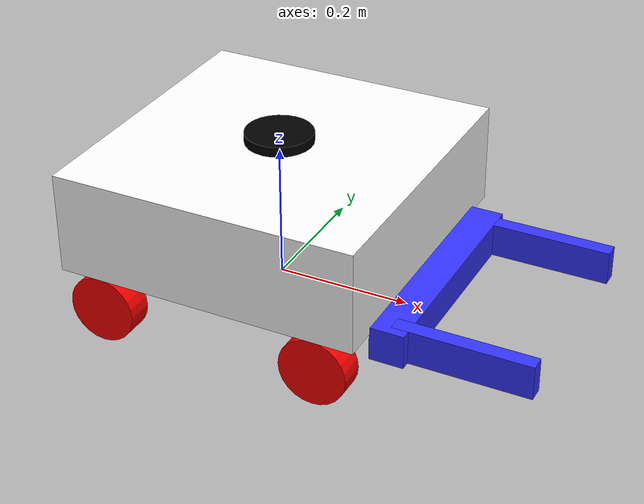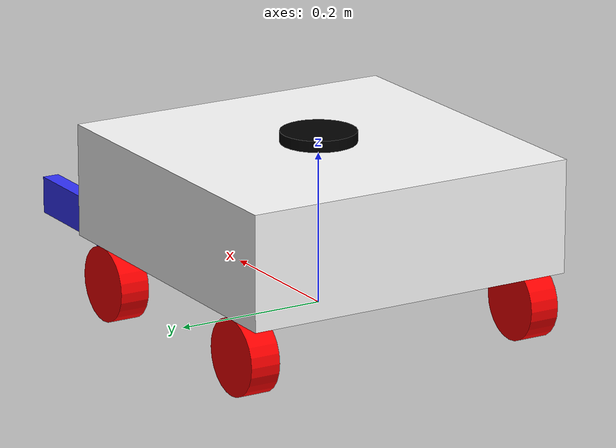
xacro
<?xml version="1.0"?>
<robot xmlns:xacro="http://www.ros.org/wiki/xacro"  name="robot">

    <xacro:include filename="inertial_macros.xacro" />
    <xacro:include filename="robot_car.xacro" />
    <xacro:include filename="gazebo_control.xacro" />,
    <xacro:include filename="lidar.xacro" />
    <xacro:include filename="gripper.xacro" />
    <xacro:include filename="arm_tr.xacro" />
    <xacro:include filename="gripper_tr.xacro" />

    <ros2_control name="gripper_robot_gazebo_system" type="system">
        <hardware>
            <plugin>gazebo_ros2_control/GazeboSystem</plugin>
        </hardware>
        <xacro:arm_tr/>
        <xacro:gripper1_tr/>
        <xacro:gripper2_tr/>
    </ros2_control>
    <xacro:robot_controller/>
</robot>

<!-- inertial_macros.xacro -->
<robot xmlns:xacro="http://www.ros.org/wiki/xacro" >

    <!-- Specify some standard inertial calculations https://en.wikipedia.org/wiki/List_of_moments_of_inertia -->
    <!-- These make use of xacro's mathematical functionality -->
<xacro:macro name="inertial_sphere" params="mass radius *origin">
    <inertial>
        <xacro:insert_block name="origin"/>
        <mass value="${mass}" />
        <inertia ixx="${(2/5) * mass * (radius*radius)}" ixy="0.0" ixz="0.0"
                iyy="${(2/5) * mass * (radius*radius)}" iyz="0.0"
                izz="${(2/5) * mass * (radius*radius)}" />
    </inertial>
</xacro:macro>
<xacro:macro name="inertial_box" params="mass x y z *origin">
    <inertial>
        <xacro:insert_block name="origin"/>
        <mass value="${mass}" />
        <inertia ixx="${(1/12) * mass * (y*y+z*z)}" ixy="0.0" ixz="0.0"
                iyy="${(1/12) * mass * (x*x+z*z)}" iyz="0.0"
                izz="${(1/12) * mass * (x*x+y*y)}" />
    </inertial>
</xacro:macro>
    <xacro:macro name="inertial_cylinder" params="mass length radius *origin">
        <inertial>
            <xacro:insert_block name="origin"/>
            <mass value="${mass}" />
            <inertia ixx="${(1/12) * mass * (3*radius*radius + length*length)}" ixy="0.0" ixz="0.0"
                    iyy="${(1/12) * mass * (3*radius*radius + length*length)}" iyz="0.0"
                    izz="${(1/2) * mass * (radius*radius)}" />
        </inertial>
    </xacro:macro>
</robot>

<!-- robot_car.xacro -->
<robot xmlns:xacro="http://www.ros.org/wiki/xacro" >

    <material name="white">
        <color rgba="1 1 1 1" />
    </material>

    <material name="orange">
        <color rgba="1 0.3 0.1 1"/>
    </material>

    <material name="blue">
        <color rgba="0.2 0.2 1 1"/>
    </material>

    <material name="black">
        <color rgba="0 0 0 1"/>
    </material>

    <material name="red">
        <color rgba="1 0 0 1"/>
    </material>

    <material name="green">
        <color rgba="0 1 0 1" />
    </material>

    <material name="gray">
        <color rgba="0.5 0.5 0.5 1" />
    </material>

    <material name="pink">
        <color rgba="1 0.4 0.7 1" />
    </material>

    <!-- BASE LINK -->

    <link name="base_link">
    </link>

    <!-- BASE_FOOTPRINT LINK -->
    <joint name="base_footprint_joint" type="fixed">
        <parent link="base_link"/>
        <child link="base_footprint"/>
        <origin xyz="0 0 0" rpy="0 0 0"/>
    </joint>

    <link name="base_footprint">
    </link>

    <joint name="chassis_joint" type="fixed">
        <parent link="base_link"/>
        <child link="chassis"/>
        <origin xyz="0 0 0"/>
    </joint>

    <!-- Chassis Link -->
    <link name="chassis">
        <visual>
            <origin xyz="0 0 0.14" rpy="0 0 0"/>
            <geometry>
                <box size="0.452 0.452 0.15"/>
                <!-- Hole geometry -->
                <cylinder length="0.15" radius="0.0725"/>
            </geometry>
            <material name="white"/>
        </visual>
        <collision>
            <origin xyz="0 0 0.14" rpy="0 0 0"/>
            <geometry>
                <box size="0.452 0.452 0.15"/>
                <!-- Hole geometry -->
                <cylinder length="0.15" radius="0.0725"/>
            </geometry>
        </collision>
        <xacro:inertial_box mass="200.0" x="0.452" y="0.452" z="0.15">
            <origin xyz="0 0 0.14" rpy="0 0 0"/>
        </xacro:inertial_box>
    </link>
    <gazebo reference="chassis">
        <material>Gazebo/White</material>
    </gazebo>

    <!-- frontleft -->

    <joint name="front_left_wheel_joint" type="continuous">
        <parent link="base_link"/>
        <child link="front_left_wheel"/>
        <origin xyz="0.165 0.205 0.015" rpy="-${pi/2} 0 0"/>
        <axis xyz="0 0 1"/>
    </joint>

    <link name="front_left_wheel">
        <visual>
            <geometry>
                <cylinder length="0.04" radius="0.05" />
            </geometry>
            <material name="red"/>
        </visual>
        <collision>
            <geometry>
                <cylinder length="0.04" radius="0.05" />
            </geometry>
        </collision>
        <xacro:inertial_cylinder mass="20" length="0.04" radius="0.05">
            <origin xyz="0 0 0" rpy="0 0 0"/>
        </xacro:inertial_cylinder>
    </link>
    <gazebo reference="front_left_wheel">
        <material>Gazebo/Red</material>
    </gazebo>

    <!-- frontright -->

    <joint name="front_right_wheel_joint" type="continuous">
        <parent link="base_link"/>
        <child link="front_right_wheel"/>
        <origin xyz="0.165 -0.205 0.015" rpy="${pi/2} 0 0"/>
        <axis xyz="0 0 -1"/>
    </joint>

    <link name="front_right_wheel">
        <visual>
            <geometry>
                <cylinder length="0.04" radius="0.05" />
            </geometry>
            <material name="red"/>
        </visual>
        <collision>
            <geometry>
                <cylinder length="0.04" radius="0.05" />
            </geometry>
        </collision>
        <xacro:inertial_cylinder mass="20" length="0.04" radius="0.05">
            <origin xyz="0 0 0" rpy="0 0 0"/>
        </xacro:inertial_cylinder>
    </link>
    <gazebo reference="front_right_wheel">
        <material>Gazebo/Red</material>
    </gazebo>

    <!-- backleft -->

    <joint name="back_left_wheel_joint" type="continuous">
        <parent link="base_link"/>
        <child link="back_left_wheel"/>
        <origin xyz="-0.165 0.205 0.015" rpy="-${pi/2} 0 0"/>
        <axis xyz="0 0 1"/>
    </joint>

    <link name="back_left_wheel">
        <visual>
            <geometry>
                <cylinder length="0.04" radius="0.05" />
            </geometry>
            <material name="red"/>
        </visual>
        <collision>
            <geometry>
                <cylinder length="0.04" radius="0.05" />
            </geometry>
        </collision>
        <xacro:inertial_cylinder mass="20" length="0.04" radius="0.05">
            <origin xyz="0 0 0" rpy="0 0 0"/>
        </xacro:inertial_cylinder>
    </link>
    <gazebo reference="back_left_wheel">
        <material>Gazebo/Red</material>
    </gazebo>

    <!-- backright -->

    <joint name="back_right_wheel_joint" type="continuous">
        <parent link="base_link"/>
        <child link="back_right_wheel"/>
        <origin xyz="-0.165 -0.205 0.015" rpy="${pi/2} 0 0"/>
        <axis xyz="0 0 -1"/>
    </joint>

    <link name="back_right_wheel">
        <visual>
            <geometry>
                <cylinder length="0.04" radius="0.05" />
            </geometry>
            <material name="red"/>
        </visual>
        <collision>
            <geometry>
                <cylinder length="0.04" radius="0.05" />
            </geometry>
        </collision>
        <xacro:inertial_cylinder mass="20" length="0.04" radius="0.05">
            <origin xyz="0 0 0" rpy="0 0 0"/>
        </xacro:inertial_cylinder>
    </link>
    <gazebo reference="back_right_wheel">
        <material>Gazebo/Red</material>
    </gazebo>

</robot>

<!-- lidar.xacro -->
<robot xmlns:xacro="http://www.ros.org/wiki/xacro" >

    <joint name="laser_joint" type="fixed">
        <parent link="chassis"/>
        <child link="laser_frame"/>
        <origin xyz="0 0 0.195" rpy="0 0 0"/>
    </joint>

    <link name="laser_frame">
        <visual>
            <geometry>
                <cylinder radius="0.05" length="0.07"/>
            </geometry>
            <material name="black"/>
        </visual>
        <collision>
            <geometry>
                <cylinder radius="0.05" length="0.07"/>
            </geometry>
        </collision>
        <xacro:inertial_cylinder mass="0.1" length="0.1" radius="0.05">
            <origin xyz="0 0 0" rpy="0 0 0"/>
        </xacro:inertial_cylinder>
    </link>

    <gazebo reference="laser_frame">
        <material>Gazebo/Black</material>

        <sensor name="laser" type="ray">
            <pose> 0 0 0 0 0 0 </pose>
            <visualize>false</visualize>
            <update_rate>10</update_rate>
            <ray>
                <scan>
                    <horizontal>
                        <samples>360</samples>
                        <min_angle>-3.14</min_angle>
                        <max_angle>3.14</max_angle>
                    </horizontal>
                </scan>
                <range>
                    <min>0.32</min>
                    <max>12</max>
                </range>
            </ray>

            <plugin name="laser_controller" filename="libgazebo_ros_ray_sensor.so">
                <ros>
                    <argument>~/out:=scan</argument>
                </ros>
                <output_type>sensor_msgs/LaserScan</output_type>
                <frame_name>laser_frame</frame_name>
            </plugin>
        </sensor>
    </gazebo>

</robot>

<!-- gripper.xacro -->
<robot xmlns:xacro="http://www.ros.org/wiki/xacro" >

    <!-- Gripper Base -->
    <link name="gripper_base">
        <visual>
            <origin xyz="0 0 0" rpy="0 0 0"/>
            <geometry>
                <box size="0.35 0.05 0.05"/>
            </geometry>
            <material name="blue"/>
        </visual>
        <collision>
            <origin xyz="0 0 0" rpy="0 0 0"/>
            <geometry>
                <box size="0.35 0.05 0.05"/>
            </geometry>
            <surface>
                <friction>
                    <ode>
                        <mu>2.0</mu>  <!-- Increase primary friction -->
                        <mu2>2.0</mu2>  <!-- Increase secondary friction -->
                    </ode>
                </friction>
                <contact>
                    <ode>
                        <restitution>0.0</restitution>  <!-- Lower the bounce factor -->
                        <soft_cfm>0.1</soft_cfm>  <!-- Soft constraint for smooth contact -->
                        <soft_erp>0.7</soft_erp>  <!-- Error reduction for smoother response -->
                        <kp>1000.0</kp>  <!-- Reduce excessive force -->
                        <kd>100.0</kd>  <!-- Damping to prevent sudden jumps -->
                        <max_vel>0.01</max_vel>
                    </ode>
                </contact>
            </surface>
        </collision>
        <xacro:inertial_box mass="0.5" x="0.35" y="0.05" z="0.05" >
            <origin xyz="0 0 0" rpy="0 0 0"/>
        </xacro:inertial_box>
    </link>

    <!-- Gripper Finger Left -->
    <link name="gripper_finger_left">
        <visual>
            <origin xyz="-0.075 -0.1 0" rpy="0 0 0"/>
            <geometry>
                <box size="0.0225 0.2 0.05"/>
            </geometry>
            <material name="blue"/>
        </visual>
        <collision>
            <origin xyz="-0.075 -0.1 0" rpy="0 0 0"/>
            <geometry>
                <box size="0.0225 0.2 0.1"/>
            </geometry>
            <surface>
                <friction>
                    <ode>
                        <mu>50.0</mu>  <!-- Increase primary friction -->
                        <mu2>50.0</mu2>  <!-- Increase secondary friction -->
                    </ode>
                </friction>
                <contact>
                    <ode>
                        <restitution>0.0</restitution>  <!-- Lower the bounce factor -->
                        <soft_cfm>0.1</soft_cfm>  <!-- Soft constraint for smooth contact -->
                        <soft_erp>0.7</soft_erp>  <!-- Error reduction for smoother response -->
                        <kp>1000.0</kp>  <!-- Reduce excessive force -->
                        <kd>100.0</kd>  <!-- Damping to prevent sudden jumps -->
                        <max_vel>0.01</max_vel>
                    </ode>
                </contact>
            </surface>
        </collision>
        <xacro:inertial_box mass="0.3" x="0.0225" y="0.2" z="0.05" >
            <origin xyz="-0.075 -0.1 0" rpy="0 0 0"/>
        </xacro:inertial_box>
    </link>

    <!-- Gripper Finger Right -->
    <link name="gripper_finger_right">
        <visual>
            <origin xyz="0.075 -0.10 0" rpy="0 0 0"/>
            <geometry>
                <box size="0.0225 0.2 0.05"/>
            </geometry>
            <material name="blue"/>
        </visual>
        <collision>
            <origin xyz="0.075 -0.10 0" rpy="0 0 0"/>
            <geometry>
                <box size="0.0225 0.2 0.1"/>
            </geometry>
            <surface>
                <friction>
                    <ode>
                        <mu>50.0</mu>  <!-- Increase primary friction -->
                        <mu2>50.0</mu2>  <!-- Increase secondary friction -->
                    </ode>
                </friction>
                <contact>
                    <ode>
                        <restitution>0.0</restitution>  <!-- Lower the bounce factor -->
                        <soft_cfm>0.1</soft_cfm>  <!-- Soft constraint for smooth contact -->
                        <soft_erp>0.7</soft_erp>  <!-- Error reduction for smoother response -->
                        <kp>1000.0</kp>  <!-- Reduce excessive force -->
                        <kd>100.0</kd>  <!-- Damping to prevent sudden jumps -->
                        <max_vel>0.01</max_vel>
                    </ode>
                </contact>
            </surface>
        </collision>
        <xacro:inertial_box mass="0.3" x="0.0225" y="0.2" z="0.05" >
            <origin xyz="0.075 -0.10 0" rpy="0 0 0"/>
        </xacro:inertial_box>
    </link>

    <!-- Vertical Movement Joint for Gripper -->
    <joint name="gripper_vertical_joint" type="prismatic">
        <parent link="chassis"/>
        <child link="gripper_base"/>
        <origin xyz="0.25 0 0.05" rpy="0 0 1.57"/>
        <axis xyz="0 0 1"/>
        <limit effort="80" lower="0" upper="0.13" velocity="0.1"/>
        <dynamics damping="80.0" friction="5.0"/>
    </joint>

    <!-- Gripper Finger Joints -->
    <joint name="gripper_finger_left_joint" type="prismatic">
        <parent link="gripper_base"/>
        <child link="gripper_finger_left"/>
        <origin xyz="-0.075 0 0" rpy="0 0 0"/>
        <axis xyz="1 0 0"/>
        <limit effort="120" lower="0" upper="0.065" velocity="0.1"/>
        <dynamics damping="120.0" friction="5.0"/>
    </joint>

    <joint name="gripper_finger_right_joint" type="prismatic">
        <parent link="gripper_base"/>
        <child link="gripper_finger_right"/>
        <origin xyz="0.075 0 0" rpy="0 0 0"/>
        <axis xyz="1 0 0"/>
        <limit effort="120" lower="-0.065" upper="0" velocity="0.1"/>
        <dynamics damping="120.0" friction="5.0"/>
    </joint>

    <!-- Gazebo Simulation for Gripper -->
    <gazebo reference="gripper_base">
        <material>Gazebo/Blue</material>
        <gravity>true</gravity>
        <ode>
            <solver_iterations>500</solver_iterations>  <!-- Increase solver iterations -->
            <solver_type>quick_nonlinear</solver_type>  <!-- Adjust solver for stability -->
        </ode>
    </gazebo>

    <gazebo reference="gripper_finger_left">
        <material>Gazebo/Blue</material>
        <gravity>true</gravity>
        <ode>
            <solver_iterations>500</solver_iterations>  <!-- Increase solver iterations -->
            <solver_type>quick_nonlinear</solver_type>  <!-- Adjust solver for stability -->
        </ode>
    </gazebo>

    <gazebo reference="gripper_finger_right">
        <material>Gazebo/Blue</material>
        <gravity>true</gravity>
        <ode>
            <solver_iterations>500</solver_iterations>  <!-- Increase solver iterations -->
            <solver_type>quick_nonlinear</solver_type>  <!-- Adjust solver for stability -->
        </ode>
    </gazebo>
    <gazebo>
        <plugin name="contact_plugin" filename="libgazebo_ros_contact.so">
            <update_rate>1000</update_rate>
            <contact_topic>/gripper_contacts</contact_topic>
        </plugin>
    </gazebo>

</robot>
